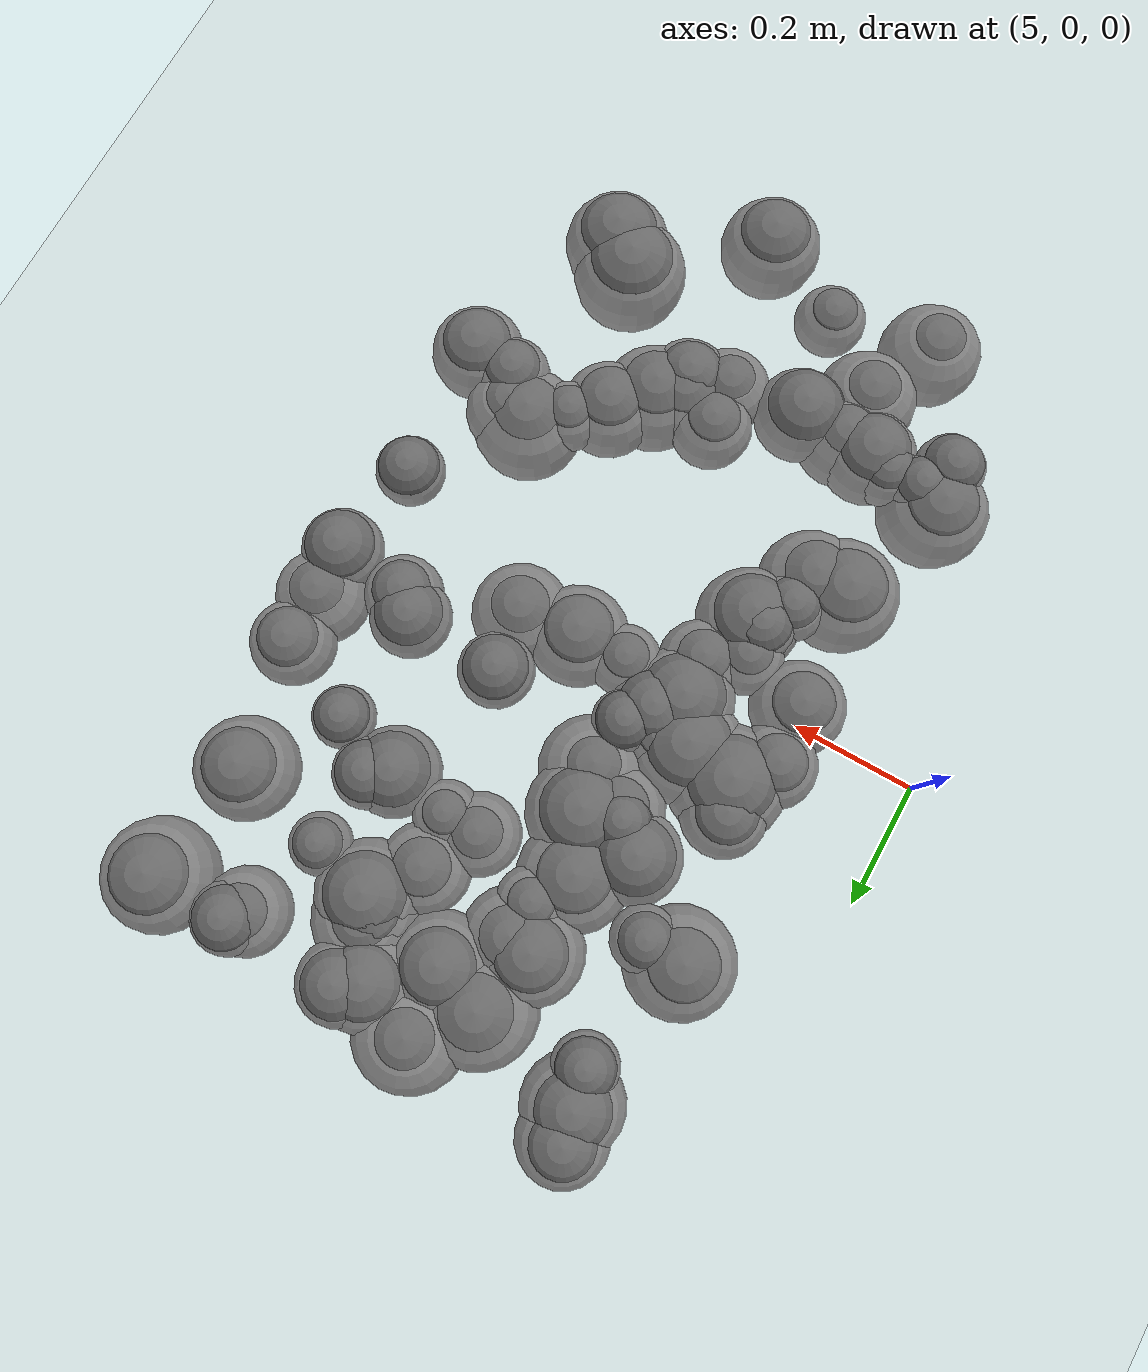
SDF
<sdf version="1.6">
 <world name="high_freq_world">
  <model name="ground_plane">
   <static>true</static>
   <link name="link">
    <collision name="collision">
     <geometry><plane><normal>0 0 1</normal><size>100 100</size></plane></geometry>
     <surface><friction><ode><mu>100.0</mu><mu2>100.0</mu2></ode></friction></surface>
    </collision>
    <visual name="visual">
     <geometry><plane><normal>0 0 1</normal><size>100 100</size></plane></geometry>
     <material><ambient>0.8 0.8 0.8 1</ambient><diffuse>0.8 0.8 0.8 1</diffuse></material>
    </visual>
   </link>
  </model>
  <model name="bump_3">
   <static>true</static>
   <pose>5.639 0.567 -0.061 0 0 0</pose>
   <link name="link">
    <collision name="collision">
     <geometry><sphere><radius>0.078</radius></sphere></geometry>
     <surface><friction><ode><mu>100.0</mu><mu2>100.0</mu2></ode></friction></surface>
    </collision>
    <visual name="visual">
     <geometry><sphere><radius>0.078</radius></sphere></geometry>
     <material><ambient>0.3 0.3 0.3 1</ambient><diffuse>0.4 0.4 0.4 1</diffuse></material>
    </visual>
   </link>
  </model>
  <model name="bump_20">
   <static>true</static>
   <pose>5.345 -0.571 -0.075 0 0 0</pose>
   <link name="link">
    <collision name="collision">
     <geometry><sphere><radius>0.086</radius></sphere></geometry>
     <surface><friction><ode><mu>100.0</mu><mu2>100.0</mu2></ode></friction></surface>
    </collision>
    <visual name="visual">
     <geometry><sphere><radius>0.086</radius></sphere></geometry>
     <material><ambient>0.3 0.3 0.3 1</ambient><diffuse>0.4 0.4 0.4 1</diffuse></material>
    </visual>
   </link>
  </model>
  <model name="bump_21">
   <static>true</static>
   <pose>5.287 -0.701 -0.077 0 0 0</pose>
   <link name="link">
    <collision name="collision">
     <geometry><sphere><radius>0.087</radius></sphere></geometry>
     <surface><friction><ode><mu>100.0</mu><mu2>100.0</mu2></ode></friction></surface>
    </collision>
    <visual name="visual">
     <geometry><sphere><radius>0.087</radius></sphere></geometry>
     <material><ambient>0.3 0.3 0.3 1</ambient><diffuse>0.4 0.4 0.4 1</diffuse></material>
    </visual>
   </link>
  </model>
  <model name="bump_32">
   <static>true</static>
   <pose>5.493 0.702 -0.084 0 0 0</pose>
   <link name="link">
    <collision name="collision">
     <geometry><sphere><radius>0.095</radius></sphere></geometry>
     <surface><friction><ode><mu>100.0</mu><mu2>100.0</mu2></ode></friction></surface>
    </collision>
    <visual name="visual">
     <geometry><sphere><radius>0.095</radius></sphere></geometry>
     <material><ambient>0.3 0.3 0.3 1</ambient><diffuse>0.4 0.4 0.4 1</diffuse></material>
    </visual>
   </link>
  </model>
  <model name="bump_49">
   <static>true</static>
   <pose>5.717 -0.340 -0.063 0 0 0</pose>
   <link name="link">
    <collision name="collision">
     <geometry><sphere><radius>0.081</radius></sphere></geometry>
     <surface><friction><ode><mu>100.0</mu><mu2>100.0</mu2></ode></friction></surface>
    </collision>
    <visual name="visual">
     <geometry><sphere><radius>0.081</radius></sphere></geometry>
     <material><ambient>0.3 0.3 0.3 1</ambient><diffuse>0.4 0.4 0.4 1</diffuse></material>
    </visual>
   </link>
  </model>
  <model name="bump_70">
   <static>true</static>
   <pose>5.224 0.668 -0.059 0 0 0</pose>
   <link name="link">
    <collision name="collision">
     <geometry><sphere><radius>0.083</radius></sphere></geometry>
     <surface><friction><ode><mu>100.0</mu><mu2>100.0</mu2></ode></friction></surface>
    </collision>
    <visual name="visual">
     <geometry><sphere><radius>0.083</radius></sphere></geometry>
     <material><ambient>0.3 0.3 0.3 1</ambient><diffuse>0.4 0.4 0.4 1</diffuse></material>
    </visual>
   </link>
  </model>
  <model name="bump_76">
   <static>true</static>
   <pose>5.201 -0.459 -0.032 0 0 0</pose>
   <link name="link">
    <collision name="collision">
     <geometry><sphere><radius>0.053</radius></sphere></geometry>
     <surface><friction><ode><mu>100.0</mu><mu2>100.0</mu2></ode></friction></surface>
    </collision>
    <visual name="visual">
     <geometry><sphere><radius>0.053</radius></sphere></geometry>
     <material><ambient>0.3 0.3 0.3 1</ambient><diffuse>0.4 0.4 0.4 1</diffuse></material>
    </visual>
   </link>
  </model>
  <model name="bump_83">
   <static>true</static>
   <pose>5.158 -0.446 -0.072 0 0 0</pose>
   <link name="link">
    <collision name="collision">
     <geometry><sphere><radius>0.092</radius></sphere></geometry>
     <surface><friction><ode><mu>100.0</mu><mu2>100.0</mu2></ode></friction></surface>
    </collision>
    <visual name="visual">
     <geometry><sphere><radius>0.092</radius></sphere></geometry>
     <material><ambient>0.3 0.3 0.3 1</ambient><diffuse>0.4 0.4 0.4 1</diffuse></material>
    </visual>
   </link>
  </model>
  <model name="bump_94">
   <static>true</static>
   <pose>5.248 0.400 -0.036 0 0 0</pose>
   <link name="link">
    <collision name="collision">
     <geometry><sphere><radius>0.055</radius></sphere></geometry>
     <surface><friction><ode><mu>100.0</mu><mu2>100.0</mu2></ode></friction></surface>
    </collision>
    <visual name="visual">
     <geometry><sphere><radius>0.055</radius></sphere></geometry>
     <material><ambient>0.3 0.3 0.3 1</ambient><diffuse>0.4 0.4 0.4 1</diffuse></material>
    </visual>
   </link>
  </model>
  <model name="bump_98">
   <static>true</static>
   <pose>5.248 0.121 -0.069 0 0 0</pose>
   <link name="link">
    <collision name="collision">
     <geometry><sphere><radius>0.099</radius></sphere></geometry>
     <surface><friction><ode><mu>100.0</mu><mu2>100.0</mu2></ode></friction></surface>
    </collision>
    <visual name="visual">
     <geometry><sphere><radius>0.099</radius></sphere></geometry>
     <material><ambient>0.3 0.3 0.3 1</ambient><diffuse>0.4 0.4 0.4 1</diffuse></material>
    </visual>
   </link>
  </model>
  <model name="bump_110">
   <static>true</static>
   <pose>5.347 -0.481 -0.064 0 0 0</pose>
   <link name="link">
    <collision name="collision">
     <geometry><sphere><radius>0.076</radius></sphere></geometry>
     <surface><friction><ode><mu>100.0</mu><mu2>100.0</mu2></ode></friction></surface>
    </collision>
    <visual name="visual">
     <geometry><sphere><radius>0.076</radius></sphere></geometry>
     <material><ambient>0.3 0.3 0.3 1</ambient><diffuse>0.4 0.4 0.4 1</diffuse></material>
    </visual>
   </link>
  </model>
  <model name="bump_115">
   <static>true</static>
   <pose>5.806 -0.577 -0.068 0 0 0</pose>
   <link name="link">
    <collision name="collision">
     <geometry><sphere><radius>0.097</radius></sphere></geometry>
     <surface><friction><ode><mu>100.0</mu><mu2>100.0</mu2></ode></friction></surface>
    </collision>
    <visual name="visual">
     <geometry><sphere><radius>0.097</radius></sphere></geometry>
     <material><ambient>0.3 0.3 0.3 1</ambient><diffuse>0.4 0.4 0.4 1</diffuse></material>
    </visual>
   </link>
  </model>
  <model name="bump_129">
   <static>true</static>
   <pose>5.619 -0.420 -0.067 0 0 0</pose>
   <link name="link">
    <collision name="collision">
     <geometry><sphere><radius>0.083</radius></sphere></geometry>
     <surface><friction><ode><mu>100.0</mu><mu2>100.0</mu2></ode></friction></surface>
    </collision>
    <visual name="visual">
     <geometry><sphere><radius>0.083</radius></sphere></geometry>
     <material><ambient>0.3 0.3 0.3 1</ambient><diffuse>0.4 0.4 0.4 1</diffuse></material>
    </visual>
   </link>
  </model>
  <model name="bump_131">
   <static>true</static>
   <pose>5.828 0.331 -0.028 0 0 0</pose>
   <link name="link">
    <collision name="collision">
     <geometry><sphere><radius>0.052</radius></sphere></geometry>
     <surface><friction><ode><mu>100.0</mu><mu2>100.0</mu2></ode></friction></surface>
    </collision>
    <visual name="visual">
     <geometry><sphere><radius>0.052</radius></sphere></geometry>
     <material><ambient>0.3 0.3 0.3 1</ambient><diffuse>0.4 0.4 0.4 1</diffuse></material>
    </visual>
   </link>
  </model>
  <model name="bump_133">
   <static>true</static>
   <pose>5.640 0.584 -0.080 0 0 0</pose>
   <link name="link">
    <collision name="collision">
     <geometry><sphere><radius>0.091</radius></sphere></geometry>
     <surface><friction><ode><mu>100.0</mu><mu2>100.0</mu2></ode></friction></surface>
    </collision>
    <visual name="visual">
     <geometry><sphere><radius>0.091</radius></sphere></geometry>
     <material><ambient>0.3 0.3 0.3 1</ambient><diffuse>0.4 0.4 0.4 1</diffuse></material>
    </visual>
   </link>
  </model>
  <model name="bump_134">
   <static>true</static>
   <pose>5.237 0.607 -0.027 0 0 0</pose>
   <link name="link">
    <collision name="collision">
     <geometry><sphere><radius>0.054</radius></sphere></geometry>
     <surface><friction><ode><mu>100.0</mu><mu2>100.0</mu2></ode></friction></surface>
    </collision>
    <visual name="visual">
     <geometry><sphere><radius>0.054</radius></sphere></geometry>
     <material><ambient>0.3 0.3 0.3 1</ambient><diffuse>0.4 0.4 0.4 1</diffuse></material>
    </visual>
   </link>
  </model>
  <model name="bump_136">
   <static>true</static>
   <pose>5.821 0.138 -0.042 0 0 0</pose>
   <link name="link">
    <collision name="collision">
     <geometry><sphere><radius>0.068</radius></sphere></geometry>
     <surface><friction><ode><mu>100.0</mu><mu2>100.0</mu2></ode></friction></surface>
    </collision>
    <visual name="visual">
     <geometry><sphere><radius>0.068</radius></sphere></geometry>
     <material><ambient>0.3 0.3 0.3 1</ambient><diffuse>0.4 0.4 0.4 1</diffuse></material>
    </visual>
   </link>
  </model>
  <model name="bump_137">
   <static>true</static>
   <pose>5.376 0.041 -0.060 0 0 0</pose>
   <link name="link">
    <collision name="collision">
     <geometry><sphere><radius>0.090</radius></sphere></geometry>
     <surface><friction><ode><mu>100.0</mu><mu2>100.0</mu2></ode></friction></surface>
    </collision>
    <visual name="visual">
     <geometry><sphere><radius>0.090</radius></sphere></geometry>
     <material><ambient>0.3 0.3 0.3 1</ambient><diffuse>0.4 0.4 0.4 1</diffuse></material>
    </visual>
   </link>
  </model>
  <model name="bump_149">
   <static>true</static>
   <pose>5.227 -0.246 -0.075 0 0 0</pose>
   <link name="link">
    <collision name="collision">
     <geometry><sphere><radius>0.096</radius></sphere></geometry>
     <surface><friction><ode><mu>100.0</mu><mu2>100.0</mu2></ode></friction></surface>
    </collision>
    <visual name="visual">
     <geometry><sphere><radius>0.096</radius></sphere></geometry>
     <material><ambient>0.3 0.3 0.3 1</ambient><diffuse>0.4 0.4 0.4 1</diffuse></material>
    </visual>
   </link>
  </model>
  <model name="bump_154">
   <static>true</static>
   <pose>5.380 0.245 -0.064 0 0 0</pose>
   <link name="link">
    <collision name="collision">
     <geometry><sphere><radius>0.079</radius></sphere></geometry>
     <surface><friction><ode><mu>100.0</mu><mu2>100.0</mu2></ode></friction></surface>
    </collision>
    <visual name="visual">
     <geometry><sphere><radius>0.079</radius></sphere></geometry>
     <material><ambient>0.3 0.3 0.3 1</ambient><diffuse>0.4 0.4 0.4 1</diffuse></material>
    </visual>
   </link>
  </model>
  <model name="bump_157">
   <static>true</static>
   <pose>5.927 0.476 -0.063 0 0 0</pose>
   <link name="link">
    <collision name="collision">
     <geometry><sphere><radius>0.086</radius></sphere></geometry>
     <surface><friction><ode><mu>100.0</mu><mu2>100.0</mu2></ode></friction></surface>
    </collision>
    <visual name="visual">
     <geometry><sphere><radius>0.086</radius></sphere></geometry>
     <material><ambient>0.3 0.3 0.3 1</ambient><diffuse>0.4 0.4 0.4 1</diffuse></material>
    </visual>
   </link>
  </model>
  <model name="bump_160">
   <static>true</static>
   <pose>5.968 0.266 -0.052 0 0 0</pose>
   <link name="link">
    <collision name="collision">
     <geometry><sphere><radius>0.071</radius></sphere></geometry>
     <surface><friction><ode><mu>100.0</mu><mu2>100.0</mu2></ode></friction></surface>
    </collision>
    <visual name="visual">
     <geometry><sphere><radius>0.071</radius></sphere></geometry>
     <material><ambient>0.3 0.3 0.3 1</ambient><diffuse>0.4 0.4 0.4 1</diffuse></material>
    </visual>
   </link>
  </model>
  <model name="bump_166">
   <static>true</static>
   <pose>5.317 -0.072 -0.052 0 0 0</pose>
   <link name="link">
    <collision name="collision">
     <geometry><sphere><radius>0.063</radius></sphere></geometry>
     <surface><friction><ode><mu>100.0</mu><mu2>100.0</mu2></ode></friction></surface>
    </collision>
    <visual name="visual">
     <geometry><sphere><radius>0.063</radius></sphere></geometry>
     <material><ambient>0.3 0.3 0.3 1</ambient><diffuse>0.4 0.4 0.4 1</diffuse></material>
    </visual>
   </link>
  </model>
  <model name="bump_172">
   <static>true</static>
   <pose>5.230 0.170 -0.051 0 0 0</pose>
   <link name="link">
    <collision name="collision">
     <geometry><sphere><radius>0.071</radius></sphere></geometry>
     <surface><friction><ode><mu>100.0</mu><mu2>100.0</mu2></ode></friction></surface>
    </collision>
    <visual name="visual">
     <geometry><sphere><radius>0.071</radius></sphere></geometry>
     <material><ambient>0.3 0.3 0.3 1</ambient><diffuse>0.4 0.4 0.4 1</diffuse></material>
    </visual>
   </link>
  </model>
  <model name="bump_176">
   <static>true</static>
   <pose>5.749 0.388 -0.033 0 0 0</pose>
   <link name="link">
    <collision name="collision">
     <geometry><sphere><radius>0.059</radius></sphere></geometry>
     <surface><friction><ode><mu>100.0</mu><mu2>100.0</mu2></ode></friction></surface>
    </collision>
    <visual name="visual">
     <geometry><sphere><radius>0.059</radius></sphere></geometry>
     <material><ambient>0.3 0.3 0.3 1</ambient><diffuse>0.4 0.4 0.4 1</diffuse></material>
    </visual>
   </link>
  </model>
  <model name="bump_184">
   <static>true</static>
   <pose>5.851 -0.613 -0.063 0 0 0</pose>
   <link name="link">
    <collision name="collision">
     <geometry><sphere><radius>0.090</radius></sphere></geometry>
     <surface><friction><ode><mu>100.0</mu><mu2>100.0</mu2></ode></friction></surface>
    </collision>
    <visual name="visual">
     <geometry><sphere><radius>0.090</radius></sphere></geometry>
     <material><ambient>0.3 0.3 0.3 1</ambient><diffuse>0.4 0.4 0.4 1</diffuse></material>
    </visual>
   </link>
  </model>
  <model name="bump_188">
   <static>true</static>
   <pose>5.366 0.260 -0.023 0 0 0</pose>
   <link name="link">
    <collision name="collision">
     <geometry><sphere><radius>0.051</radius></sphere></geometry>
     <surface><friction><ode><mu>100.0</mu><mu2>100.0</mu2></ode></friction></surface>
    </collision>
    <visual name="visual">
     <geometry><sphere><radius>0.051</radius></sphere></geometry>
     <material><ambient>0.3 0.3 0.3 1</ambient><diffuse>0.4 0.4 0.4 1</diffuse></material>
    </visual>
   </link>
  </model>
  <model name="bump_191">
   <static>true</static>
   <pose>5.959 -0.318 -0.056 0 0 0</pose>
   <link name="link">
    <collision name="collision">
     <geometry><sphere><radius>0.079</radius></sphere></geometry>
     <surface><friction><ode><mu>100.0</mu><mu2>100.0</mu2></ode></friction></surface>
    </collision>
    <visual name="visual">
     <geometry><sphere><radius>0.079</radius></sphere></geometry>
     <material><ambient>0.3 0.3 0.3 1</ambient><diffuse>0.4 0.4 0.4 1</diffuse></material>
    </visual>
   </link>
  </model>
  <model name="bump_193">
   <static>true</static>
   <pose>5.822 0.685 -0.034 0 0 0</pose>
   <link name="link">
    <collision name="collision">
     <geometry><sphere><radius>0.060</radius></sphere></geometry>
     <surface><friction><ode><mu>100.0</mu><mu2>100.0</mu2></ode></friction></surface>
    </collision>
    <visual name="visual">
     <geometry><sphere><radius>0.060</radius></sphere></geometry>
     <material><ambient>0.3 0.3 0.3 1</ambient><diffuse>0.4 0.4 0.4 1</diffuse></material>
    </visual>
   </link>
  </model>
  <model name="bump_197">
   <static>true</static>
   <pose>5.171 -0.513 -0.033 0 0 0</pose>
   <link name="link">
    <collision name="collision">
     <geometry><sphere><radius>0.059</radius></sphere></geometry>
     <surface><friction><ode><mu>100.0</mu><mu2>100.0</mu2></ode></friction></surface>
    </collision>
    <visual name="visual">
     <geometry><sphere><radius>0.059</radius></sphere></geometry>
     <material><ambient>0.3 0.3 0.3 1</ambient><diffuse>0.4 0.4 0.4 1</diffuse></material>
    </visual>
   </link>
  </model>
  <model name="bump_200">
   <static>true</static>
   <pose>5.390 0.503 -0.064 0 0 0</pose>
   <link name="link">
    <collision name="collision">
     <geometry><sphere><radius>0.086</radius></sphere></geometry>
     <surface><friction><ode><mu>100.0</mu><mu2>100.0</mu2></ode></friction></surface>
    </collision>
    <visual name="visual">
     <geometry><sphere><radius>0.086</radius></sphere></geometry>
     <material><ambient>0.3 0.3 0.3 1</ambient><diffuse>0.4 0.4 0.4 1</diffuse></material>
    </visual>
   </link>
  </model>
  <model name="bump_206">
   <static>true</static>
   <pose>5.438 0.120 -0.024 0 0 0</pose>
   <link name="link">
    <collision name="collision">
     <geometry><sphere><radius>0.052</radius></sphere></geometry>
     <surface><friction><ode><mu>100.0</mu><mu2>100.0</mu2></ode></friction></surface>
    </collision>
    <visual name="visual">
     <geometry><sphere><radius>0.052</radius></sphere></geometry>
     <material><ambient>0.3 0.3 0.3 1</ambient><diffuse>0.4 0.4 0.4 1</diffuse></material>
    </visual>
   </link>
  </model>
  <model name="bump_208">
   <static>true</static>
   <pose>5.571 0.028 -0.065 0 0 0</pose>
   <link name="link">
    <collision name="collision">
     <geometry><sphere><radius>0.085</radius></sphere></geometry>
     <surface><friction><ode><mu>100.0</mu><mu2>100.0</mu2></ode></friction></surface>
    </collision>
    <visual name="visual">
     <geometry><sphere><radius>0.085</radius></sphere></geometry>
     <material><ambient>0.3 0.3 0.3 1</ambient><diffuse>0.4 0.4 0.4 1</diffuse></material>
    </visual>
   </link>
  </model>
  <model name="bump_209">
   <static>true</static>
   <pose>5.558 -0.468 -0.062 0 0 0</pose>
   <link name="link">
    <collision name="collision">
     <geometry><sphere><radius>0.072</radius></sphere></geometry>
     <surface><friction><ode><mu>100.0</mu><mu2>100.0</mu2></ode></friction></surface>
    </collision>
    <visual name="visual">
     <geometry><sphere><radius>0.072</radius></sphere></geometry>
     <material><ambient>0.3 0.3 0.3 1</ambient><diffuse>0.4 0.4 0.4 1</diffuse></material>
    </visual>
   </link>
  </model>
  <model name="bump_210">
   <static>true</static>
   <pose>5.851 0.110 -0.047 0 0 0</pose>
   <link name="link">
    <collision name="collision">
     <geometry><sphere><radius>0.066</radius></sphere></geometry>
     <surface><friction><ode><mu>100.0</mu><mu2>100.0</mu2></ode></friction></surface>
    </collision>
    <visual name="visual">
     <geometry><sphere><radius>0.066</radius></sphere></geometry>
     <material><ambient>0.3 0.3 0.3 1</ambient><diffuse>0.4 0.4 0.4 1</diffuse></material>
    </visual>
   </link>
  </model>
  <model name="bump_222">
   <static>true</static>
   <pose>5.655 0.549 -0.060 0 0 0</pose>
   <link name="link">
    <collision name="collision">
     <geometry><sphere><radius>0.088</radius></sphere></geometry>
     <surface><friction><ode><mu>100.0</mu><mu2>100.0</mu2></ode></friction></surface>
    </collision>
    <visual name="visual">
     <geometry><sphere><radius>0.088</radius></sphere></geometry>
     <material><ambient>0.3 0.3 0.3 1</ambient><diffuse>0.4 0.4 0.4 1</diffuse></material>
    </visual>
   </link>
  </model>
  <model name="bump_234">
   <static>true</static>
   <pose>5.377 -0.031 -0.057 0 0 0</pose>
   <link name="link">
    <collision name="collision">
     <geometry><sphere><radius>0.070</radius></sphere></geometry>
     <surface><friction><ode><mu>100.0</mu><mu2>100.0</mu2></ode></friction></surface>
    </collision>
    <visual name="visual">
     <geometry><sphere><radius>0.070</radius></sphere></geometry>
     <material><ambient>0.3 0.3 0.3 1</ambient><diffuse>0.4 0.4 0.4 1</diffuse></material>
    </visual>
   </link>
  </model>
  <model name="bump_239">
   <static>true</static>
   <pose>5.970 0.174 -0.067 0 0 0</pose>
   <link name="link">
    <collision name="collision">
     <geometry><sphere><radius>0.079</radius></sphere></geometry>
     <surface><friction><ode><mu>100.0</mu><mu2>100.0</mu2></ode></friction></surface>
    </collision>
    <visual name="visual">
     <geometry><sphere><radius>0.079</radius></sphere></geometry>
     <material><ambient>0.3 0.3 0.3 1</ambient><diffuse>0.4 0.4 0.4 1</diffuse></material>
    </visual>
   </link>
  </model>
  <model name="bump_247">
   <static>true</static>
   <pose>5.375 0.110 -0.048 0 0 0</pose>
   <link name="link">
    <collision name="collision">
     <geometry><sphere><radius>0.061</radius></sphere></geometry>
     <surface><friction><ode><mu>100.0</mu><mu2>100.0</mu2></ode></friction></surface>
    </collision>
    <visual name="visual">
     <geometry><sphere><radius>0.061</radius></sphere></geometry>
     <material><ambient>0.3 0.3 0.3 1</ambient><diffuse>0.4 0.4 0.4 1</diffuse></material>
    </visual>
   </link>
  </model>
  <model name="bump_250">
   <static>true</static>
   <pose>5.945 -0.073 -0.029 0 0 0</pose>
   <link name="link">
    <collision name="collision">
     <geometry><sphere><radius>0.058</radius></sphere></geometry>
     <surface><friction><ode><mu>100.0</mu><mu2>100.0</mu2></ode></friction></surface>
    </collision>
    <visual name="visual">
     <geometry><sphere><radius>0.058</radius></sphere></geometry>
     <material><ambient>0.3 0.3 0.3 1</ambient><diffuse>0.4 0.4 0.4 1</diffuse></material>
    </visual>
   </link>
  </model>
  <model name="bump_257">
   <static>true</static>
   <pose>5.767 -0.291 -0.047 0 0 0</pose>
   <link name="link">
    <collision name="collision">
     <geometry><sphere><radius>0.059</radius></sphere></geometry>
     <surface><friction><ode><mu>100.0</mu><mu2>100.0</mu2></ode></friction></surface>
    </collision>
    <visual name="visual">
     <geometry><sphere><radius>0.059</radius></sphere></geometry>
     <material><ambient>0.3 0.3 0.3 1</ambient><diffuse>0.4 0.4 0.4 1</diffuse></material>
    </visual>
   </link>
  </model>
  <model name="bump_260">
   <static>true</static>
   <pose>5.611 0.383 -0.044 0 0 0</pose>
   <link name="link">
    <collision name="collision">
     <geometry><sphere><radius>0.055</radius></sphere></geometry>
     <surface><friction><ode><mu>100.0</mu><mu2>100.0</mu2></ode></friction></surface>
    </collision>
    <visual name="visual">
     <geometry><sphere><radius>0.055</radius></sphere></geometry>
     <material><ambient>0.3 0.3 0.3 1</ambient><diffuse>0.4 0.4 0.4 1</diffuse></material>
    </visual>
   </link>
  </model>
  <model name="bump_262">
   <static>true</static>
   <pose>5.429 -0.484 -0.050 0 0 0</pose>
   <link name="link">
    <collision name="collision">
     <geometry><sphere><radius>0.079</radius></sphere></geometry>
     <surface><friction><ode><mu>100.0</mu><mu2>100.0</mu2></ode></friction></surface>
    </collision>
    <visual name="visual">
     <geometry><sphere><radius>0.079</radius></sphere></geometry>
     <material><ambient>0.3 0.3 0.3 1</ambient><diffuse>0.4 0.4 0.4 1</diffuse></material>
    </visual>
   </link>
  </model>
  <model name="bump_270">
   <static>true</static>
   <pose>5.427 0.435 -0.046 0 0 0</pose>
   <link name="link">
    <collision name="collision">
     <geometry><sphere><radius>0.058</radius></sphere></geometry>
     <surface><friction><ode><mu>100.0</mu><mu2>100.0</mu2></ode></friction></surface>
    </collision>
    <visual name="visual">
     <geometry><sphere><radius>0.058</radius></sphere></geometry>
     <material><ambient>0.3 0.3 0.3 1</ambient><diffuse>0.4 0.4 0.4 1</diffuse></material>
    </visual>
   </link>
  </model>
  <model name="bump_276">
   <static>true</static>
   <pose>5.420 0.617 -0.081 0 0 0</pose>
   <link name="link">
    <collision name="collision">
     <geometry><sphere><radius>0.098</radius></sphere></geometry>
     <surface><friction><ode><mu>100.0</mu><mu2>100.0</mu2></ode></friction></surface>
    </collision>
    <visual name="visual">
     <geometry><sphere><radius>0.098</radius></sphere></geometry>
     <material><ambient>0.3 0.3 0.3 1</ambient><diffuse>0.4 0.4 0.4 1</diffuse></material>
    </visual>
   </link>
  </model>
  <model name="bump_289">
   <static>true</static>
   <pose>5.321 0.297 -0.049 0 0 0</pose>
   <link name="link">
    <collision name="collision">
     <geometry><sphere><radius>0.078</radius></sphere></geometry>
     <surface><friction><ode><mu>100.0</mu><mu2>100.0</mu2></ode></friction></surface>
    </collision>
    <visual name="visual">
     <geometry><sphere><radius>0.078</radius></sphere></geometry>
     <material><ambient>0.3 0.3 0.3 1</ambient><diffuse>0.4 0.4 0.4 1</diffuse></material>
    </visual>
   </link>
  </model>
  <model name="bump_298">
   <static>true</static>
   <pose>5.293 -0.177 -0.040 0 0 0</pose>
   <link name="link">
    <collision name="collision">
     <geometry><sphere><radius>0.058</radius></sphere></geometry>
     <surface><friction><ode><mu>100.0</mu><mu2>100.0</mu2></ode></friction></surface>
    </collision>
    <visual name="visual">
     <geometry><sphere><radius>0.058</radius></sphere></geometry>
     <material><ambient>0.3 0.3 0.3 1</ambient><diffuse>0.4 0.4 0.4 1</diffuse></material>
    </visual>
   </link>
  </model>
  <model name="bump_302">
   <static>true</static>
   <pose>5.428 0.275 -0.062 0 0 0</pose>
   <link name="link">
    <collision name="collision">
     <geometry><sphere><radius>0.091</radius></sphere></geometry>
     <surface><friction><ode><mu>100.0</mu><mu2>100.0</mu2></ode></friction></surface>
    </collision>
    <visual name="visual">
     <geometry><sphere><radius>0.091</radius></sphere></geometry>
     <material><ambient>0.3 0.3 0.3 1</ambient><diffuse>0.4 0.4 0.4 1</diffuse></material>
    </visual>
   </link>
  </model>
  <model name="bump_316">
   <static>true</static>
   <pose>5.214 0.718 -0.054 0 0 0</pose>
   <link name="link">
    <collision name="collision">
     <geometry><sphere><radius>0.074</radius></sphere></geometry>
     <surface><friction><ode><mu>100.0</mu><mu2>100.0</mu2></ode></friction></surface>
    </collision>
    <visual name="visual">
     <geometry><sphere><radius>0.074</radius></sphere></geometry>
     <material><ambient>0.3 0.3 0.3 1</ambient><diffuse>0.4 0.4 0.4 1</diffuse></material>
    </visual>
   </link>
  </model>
  <model name="bump_319">
   <static>true</static>
   <pose>5.180 0.404 -0.074 0 0 0</pose>
   <link name="link">
    <collision name="collision">
     <geometry><sphere><radius>0.092</radius></sphere></geometry>
     <surface><friction><ode><mu>100.0</mu><mu2>100.0</mu2></ode></friction></surface>
    </collision>
    <visual name="visual">
     <geometry><sphere><radius>0.092</radius></sphere></geometry>
     <material><ambient>0.3 0.3 0.3 1</ambient><diffuse>0.4 0.4 0.4 1</diffuse></material>
    </visual>
   </link>
  </model>
  <model name="bump_324">
   <static>true</static>
   <pose>5.263 -0.458 -0.040 0 0 0</pose>
   <link name="link">
    <collision name="collision">
     <geometry><sphere><radius>0.057</radius></sphere></geometry>
     <surface><friction><ode><mu>100.0</mu><mu2>100.0</mu2></ode></friction></surface>
    </collision>
    <visual name="visual">
     <geometry><sphere><radius>0.057</radius></sphere></geometry>
     <material><ambient>0.3 0.3 0.3 1</ambient><diffuse>0.4 0.4 0.4 1</diffuse></material>
    </visual>
   </link>
  </model>
  <model name="bump_326">
   <static>true</static>
   <pose>5.599 0.472 -0.061 0 0 0</pose>
   <link name="link">
    <collision name="collision">
     <geometry><sphere><radius>0.075</radius></sphere></geometry>
     <surface><friction><ode><mu>100.0</mu><mu2>100.0</mu2></ode></friction></surface>
    </collision>
    <visual name="visual">
     <geometry><sphere><radius>0.075</radius></sphere></geometry>
     <material><ambient>0.3 0.3 0.3 1</ambient><diffuse>0.4 0.4 0.4 1</diffuse></material>
    </visual>
   </link>
  </model>
  <model name="bump_328">
   <static>true</static>
   <pose>5.807 0.666 -0.059 0 0 0</pose>
   <link name="link">
    <collision name="collision">
     <geometry><sphere><radius>0.072</radius></sphere></geometry>
     <surface><friction><ode><mu>100.0</mu><mu2>100.0</mu2></ode></friction></surface>
    </collision>
    <visual name="visual">
     <geometry><sphere><radius>0.072</radius></sphere></geometry>
     <material><ambient>0.3 0.3 0.3 1</ambient><diffuse>0.4 0.4 0.4 1</diffuse></material>
    </visual>
   </link>
  </model>
  <model name="bump_341">
   <static>true</static>
   <pose>5.332 0.104 -0.068 0 0 0</pose>
   <link name="link">
    <collision name="collision">
     <geometry><sphere><radius>0.096</radius></sphere></geometry>
     <surface><friction><ode><mu>100.0</mu><mu2>100.0</mu2></ode></friction></surface>
    </collision>
    <visual name="visual">
     <geometry><sphere><radius>0.096</radius></sphere></geometry>
     <material><ambient>0.3 0.3 0.3 1</ambient><diffuse>0.4 0.4 0.4 1</diffuse></material>
    </visual>
   </link>
  </model>
  <model name="bump_348">
   <static>true</static>
   <pose>5.757 0.519 -0.034 0 0 0</pose>
   <link name="link">
    <collision name="collision">
     <geometry><sphere><radius>0.051</radius></sphere></geometry>
     <surface><friction><ode><mu>100.0</mu><mu2>100.0</mu2></ode></friction></surface>
    </collision>
    <visual name="visual">
     <geometry><sphere><radius>0.051</radius></sphere></geometry>
     <material><ambient>0.3 0.3 0.3 1</ambient><diffuse>0.4 0.4 0.4 1</diffuse></material>
    </visual>
   </link>
  </model>
  <model name="bump_349">
   <static>true</static>
   <pose>5.296 -0.475 -0.055 0 0 0</pose>
   <link name="link">
    <collision name="collision">
     <geometry><sphere><radius>0.080</radius></sphere></geometry>
     <surface><friction><ode><mu>100.0</mu><mu2>100.0</mu2></ode></friction></surface>
    </collision>
    <visual name="visual">
     <geometry><sphere><radius>0.080</radius></sphere></geometry>
     <material><ambient>0.3 0.3 0.3 1</ambient><diffuse>0.4 0.4 0.4 1</diffuse></material>
    </visual>
   </link>
  </model>
  <model name="bump_354">
   <static>true</static>
   <pose>5.503 0.587 -0.062 0 0 0</pose>
   <link name="link">
    <collision name="collision">
     <geometry><sphere><radius>0.085</radius></sphere></geometry>
     <surface><friction><ode><mu>100.0</mu><mu2>100.0</mu2></ode></friction></surface>
    </collision>
    <visual name="visual">
     <geometry><sphere><radius>0.085</radius></sphere></geometry>
     <material><ambient>0.3 0.3 0.3 1</ambient><diffuse>0.4 0.4 0.4 1</diffuse></material>
    </visual>
   </link>
  </model>
  <model name="bump_361">
   <static>true</static>
   <pose>5.463 -0.659 -0.048 0 0 0</pose>
   <link name="link">
    <collision name="collision">
     <geometry><sphere><radius>0.060</radius></sphere></geometry>
     <surface><friction><ode><mu>100.0</mu><mu2>100.0</mu2></ode></friction></surface>
    </collision>
    <visual name="visual">
     <geometry><sphere><radius>0.060</radius></sphere></geometry>
     <material><ambient>0.3 0.3 0.3 1</ambient><diffuse>0.4 0.4 0.4 1</diffuse></material>
    </visual>
   </link>
  </model>
  <model name="bump_367">
   <static>true</static>
   <pose>5.430 0.496 -0.065 0 0 0</pose>
   <link name="link">
    <collision name="collision">
     <geometry><sphere><radius>0.079</radius></sphere></geometry>
     <surface><friction><ode><mu>100.0</mu><mu2>100.0</mu2></ode></friction></surface>
    </collision>
    <visual name="visual">
     <geometry><sphere><radius>0.079</radius></sphere></geometry>
     <material><ambient>0.3 0.3 0.3 1</ambient><diffuse>0.4 0.4 0.4 1</diffuse></material>
    </visual>
   </link>
  </model>
  <model name="bump_370">
   <static>true</static>
   <pose>5.196 0.062 -0.055 0 0 0</pose>
   <link name="link">
    <collision name="collision">
     <geometry><sphere><radius>0.071</radius></sphere></geometry>
     <surface><friction><ode><mu>100.0</mu><mu2>100.0</mu2></ode></friction></surface>
    </collision>
    <visual name="visual">
     <geometry><sphere><radius>0.071</radius></sphere></geometry>
     <material><ambient>0.3 0.3 0.3 1</ambient><diffuse>0.4 0.4 0.4 1</diffuse></material>
    </visual>
   </link>
  </model>
  <model name="bump_371">
   <static>true</static>
   <pose>5.485 0.029 -0.049 0 0 0</pose>
   <link name="link">
    <collision name="collision">
     <geometry><sphere><radius>0.060</radius></sphere></geometry>
     <surface><friction><ode><mu>100.0</mu><mu2>100.0</mu2></ode></friction></surface>
    </collision>
    <visual name="visual">
     <geometry><sphere><radius>0.060</radius></sphere></geometry>
     <material><ambient>0.3 0.3 0.3 1</ambient><diffuse>0.4 0.4 0.4 1</diffuse></material>
    </visual>
   </link>
  </model>
  <model name="bump_373">
   <static>true</static>
   <pose>5.623 -0.446 -0.050 0 0 0</pose>
   <link name="link">
    <collision name="collision">
     <geometry><sphere><radius>0.071</radius></sphere></geometry>
     <surface><friction><ode><mu>100.0</mu><mu2>100.0</mu2></ode></friction></surface>
    </collision>
    <visual name="visual">
     <geometry><sphere><radius>0.071</radius></sphere></geometry>
     <material><ambient>0.3 0.3 0.3 1</ambient><diffuse>0.4 0.4 0.4 1</diffuse></material>
    </visual>
   </link>
  </model>
  <model name="bump_375">
   <static>true</static>
   <pose>5.715 0.365 -0.047 0 0 0</pose>
   <link name="link">
    <collision name="collision">
     <geometry><sphere><radius>0.075</radius></sphere></geometry>
     <surface><friction><ode><mu>100.0</mu><mu2>100.0</mu2></ode></friction></surface>
    </collision>
    <visual name="visual">
     <geometry><sphere><radius>0.075</radius></sphere></geometry>
     <material><ambient>0.3 0.3 0.3 1</ambient><diffuse>0.4 0.4 0.4 1</diffuse></material>
    </visual>
   </link>
  </model>
  <model name="bump_379">
   <static>true</static>
   <pose>5.323 -0.123 -0.033 0 0 0</pose>
   <link name="link">
    <collision name="collision">
     <geometry><sphere><radius>0.060</radius></sphere></geometry>
     <surface><friction><ode><mu>100.0</mu><mu2>100.0</mu2></ode></friction></surface>
    </collision>
    <visual name="visual">
     <geometry><sphere><radius>0.060</radius></sphere></geometry>
     <material><ambient>0.3 0.3 0.3 1</ambient><diffuse>0.4 0.4 0.4 1</diffuse></material>
    </visual>
   </link>
  </model>
  <model name="bump_388">
   <static>true</static>
   <pose>5.616 -0.738 -0.063 0 0 0</pose>
   <link name="link">
    <collision name="collision">
     <geometry><sphere><radius>0.086</radius></sphere></geometry>
     <surface><friction><ode><mu>100.0</mu><mu2>100.0</mu2></ode></friction></surface>
    </collision>
    <visual name="visual">
     <geometry><sphere><radius>0.086</radius></sphere></geometry>
     <material><ambient>0.3 0.3 0.3 1</ambient><diffuse>0.4 0.4 0.4 1</diffuse></material>
    </visual>
   </link>
  </model>
  <model name="bump_393">
   <static>true</static>
   <pose>5.409 0.079 -0.039 0 0 0</pose>
   <link name="link">
    <collision name="collision">
     <geometry><sphere><radius>0.068</radius></sphere></geometry>
     <surface><friction><ode><mu>100.0</mu><mu2>100.0</mu2></ode></friction></surface>
    </collision>
    <visual name="visual">
     <geometry><sphere><radius>0.068</radius></sphere></geometry>
     <material><ambient>0.3 0.3 0.3 1</ambient><diffuse>0.4 0.4 0.4 1</diffuse></material>
    </visual>
   </link>
  </model>
  <model name="bump_399">
   <static>true</static>
   <pose>5.885 -0.308 -0.044 0 0 0</pose>
   <link name="link">
    <collision name="collision">
     <geometry><sphere><radius>0.063</radius></sphere></geometry>
     <surface><friction><ode><mu>100.0</mu><mu2>100.0</mu2></ode></friction></surface>
    </collision>
    <visual name="visual">
     <geometry><sphere><radius>0.063</radius></sphere></geometry>
     <material><ambient>0.3 0.3 0.3 1</ambient><diffuse>0.4 0.4 0.4 1</diffuse></material>
    </visual>
   </link>
  </model>
  <model name="bump_400">
   <static>true</static>
   <pose>5.624 0.686 -0.046 0 0 0</pose>
   <link name="link">
    <collision name="collision">
     <geometry><sphere><radius>0.070</radius></sphere></geometry>
     <surface><friction><ode><mu>100.0</mu><mu2>100.0</mu2></ode></friction></surface>
    </collision>
    <visual name="visual">
     <geometry><sphere><radius>0.070</radius></sphere></geometry>
     <material><ambient>0.3 0.3 0.3 1</ambient><diffuse>0.4 0.4 0.4 1</diffuse></material>
    </visual>
   </link>
  </model>
  <model name="bump_417">
   <static>true</static>
   <pose>5.860 -0.258 -0.068 0 0 0</pose>
   <link name="link">
    <collision name="collision">
     <geometry><sphere><radius>0.078</radius></sphere></geometry>
     <surface><friction><ode><mu>100.0</mu><mu2>100.0</mu2></ode></friction></surface>
    </collision>
    <visual name="visual">
     <geometry><sphere><radius>0.078</radius></sphere></geometry>
     <material><ambient>0.3 0.3 0.3 1</ambient><diffuse>0.4 0.4 0.4 1</diffuse></material>
    </visual>
   </link>
  </model>
  <model name="bump_421">
   <static>true</static>
   <pose>5.661 -0.399 -0.072 0 0 0</pose>
   <link name="link">
    <collision name="collision">
     <geometry><sphere><radius>0.090</radius></sphere></geometry>
     <surface><friction><ode><mu>100.0</mu><mu2>100.0</mu2></ode></friction></surface>
    </collision>
    <visual name="visual">
     <geometry><sphere><radius>0.090</radius></sphere></geometry>
     <material><ambient>0.3 0.3 0.3 1</ambient><diffuse>0.4 0.4 0.4 1</diffuse></material>
    </visual>
   </link>
  </model>
  <model name="bump_427">
   <static>true</static>
   <pose>5.551 0.385 -0.057 0 0 0</pose>
   <link name="link">
    <collision name="collision">
     <geometry><sphere><radius>0.068</radius></sphere></geometry>
     <surface><friction><ode><mu>100.0</mu><mu2>100.0</mu2></ode></friction></surface>
    </collision>
    <visual name="visual">
     <geometry><sphere><radius>0.068</radius></sphere></geometry>
     <material><ambient>0.3 0.3 0.3 1</ambient><diffuse>0.4 0.4 0.4 1</diffuse></material>
    </visual>
   </link>
  </model>
  <model name="bump_447">
   <static>true</static>
   <pose>5.656 0.147 -0.035 0 0 0</pose>
   <link name="link">
    <collision name="collision">
     <geometry><sphere><radius>0.063</radius></sphere></geometry>
     <surface><friction><ode><mu>100.0</mu><mu2>100.0</mu2></ode></friction></surface>
    </collision>
    <visual name="visual">
     <geometry><sphere><radius>0.063</radius></sphere></geometry>
     <material><ambient>0.3 0.3 0.3 1</ambient><diffuse>0.4 0.4 0.4 1</diffuse></material>
    </visual>
   </link>
  </model>
  <model name="bump_458">
   <static>true</static>
   <pose>5.590 0.664 -0.064 0 0 0</pose>
   <link name="link">
    <collision name="collision">
     <geometry><sphere><radius>0.086</radius></sphere></geometry>
     <surface><friction><ode><mu>100.0</mu><mu2>100.0</mu2></ode></friction></surface>
    </collision>
    <visual name="visual">
     <geometry><sphere><radius>0.086</radius></sphere></geometry>
     <material><ambient>0.3 0.3 0.3 1</ambient><diffuse>0.4 0.4 0.4 1</diffuse></material>
    </visual>
   </link>
  </model>
  <model name="bump_459">
   <static>true</static>
   <pose>5.672 0.039 -0.070 0 0 0</pose>
   <link name="link">
    <collision name="collision">
     <geometry><sphere><radius>0.083</radius></sphere></geometry>
     <surface><friction><ode><mu>100.0</mu><mu2>100.0</mu2></ode></friction></surface>
    </collision>
    <visual name="visual">
     <geometry><sphere><radius>0.083</radius></sphere></geometry>
     <material><ambient>0.3 0.3 0.3 1</ambient><diffuse>0.4 0.4 0.4 1</diffuse></material>
    </visual>
   </link>
  </model>
  <model name="bump_461">
   <static>true</static>
   <pose>5.826 -0.255 -0.079 0 0 0</pose>
   <link name="link">
    <collision name="collision">
     <geometry><sphere><radius>0.095</radius></sphere></geometry>
     <surface><friction><ode><mu>100.0</mu><mu2>100.0</mu2></ode></friction></surface>
    </collision>
    <visual name="visual">
     <geometry><sphere><radius>0.095</radius></sphere></geometry>
     <material><ambient>0.3 0.3 0.3 1</ambient><diffuse>0.4 0.4 0.4 1</diffuse></material>
    </visual>
   </link>
  </model>
  <model name="bump_467">
   <static>true</static>
   <pose>5.446 0.204 -0.079 0 0 0</pose>
   <link name="link">
    <collision name="collision">
     <geometry><sphere><radius>0.089</radius></sphere></geometry>
     <surface><friction><ode><mu>100.0</mu><mu2>100.0</mu2></ode></friction></surface>
    </collision>
    <visual name="visual">
     <geometry><sphere><radius>0.089</radius></sphere></geometry>
     <material><ambient>0.3 0.3 0.3 1</ambient><diffuse>0.4 0.4 0.4 1</diffuse></material>
    </visual>
   </link>
  </model>
  <model name="bump_472">
   <static>true</static>
   <pose>5.958 0.686 -0.071 0 0 0</pose>
   <link name="link">
    <collision name="collision">
     <geometry><sphere><radius>0.094</radius></sphere></geometry>
     <surface><friction><ode><mu>100.0</mu><mu2>100.0</mu2></ode></friction></surface>
    </collision>
    <visual name="visual">
     <geometry><sphere><radius>0.094</radius></sphere></geometry>
     <material><ambient>0.3 0.3 0.3 1</ambient><diffuse>0.4 0.4 0.4 1</diffuse></material>
    </visual>
   </link>
  </model>
  <model name="bump_478">
   <static>true</static>
   <pose>5.975 0.095 -0.038 0 0 0</pose>
   <link name="link">
    <collision name="collision">
     <geometry><sphere><radius>0.068</radius></sphere></geometry>
     <surface><friction><ode><mu>100.0</mu><mu2>100.0</mu2></ode></friction></surface>
    </collision>
    <visual name="visual">
     <geometry><sphere><radius>0.068</radius></sphere></geometry>
     <material><ambient>0.3 0.3 0.3 1</ambient><diffuse>0.4 0.4 0.4 1</diffuse></material>
    </visual>
   </link>
  </model>
  <model name="bump_482">
   <static>true</static>
   <pose>5.205 -0.041 -0.062 0 0 0</pose>
   <link name="link">
    <collision name="collision">
     <geometry><sphere><radius>0.079</radius></sphere></geometry>
     <surface><friction><ode><mu>100.0</mu><mu2>100.0</mu2></ode></friction></surface>
    </collision>
    <visual name="visual">
     <geometry><sphere><radius>0.079</radius></sphere></geometry>
     <material><ambient>0.3 0.3 0.3 1</ambient><diffuse>0.4 0.4 0.4 1</diffuse></material>
    </visual>
   </link>
  </model>
  <model name="bump_487">
   <static>true</static>
   <pose>5.389 0.368 -0.073 0 0 0</pose>
   <link name="link">
    <collision name="collision">
     <geometry><sphere><radius>0.093</radius></sphere></geometry>
     <surface><friction><ode><mu>100.0</mu><mu2>100.0</mu2></ode></friction></surface>
    </collision>
    <visual name="visual">
     <geometry><sphere><radius>0.093</radius></sphere></geometry>
     <material><ambient>0.3 0.3 0.3 1</ambient><diffuse>0.4 0.4 0.4 1</diffuse></material>
    </visual>
   </link>
  </model>
  <model name="bump_491">
   <static>true</static>
   <pose>5.283 -0.240 -0.071 0 0 0</pose>
   <link name="link">
    <collision name="collision">
     <geometry><sphere><radius>0.087</radius></sphere></geometry>
     <surface><friction><ode><mu>100.0</mu><mu2>100.0</mu2></ode></friction></surface>
    </collision>
    <visual name="visual">
     <geometry><sphere><radius>0.087</radius></sphere></geometry>
     <material><ambient>0.3 0.3 0.3 1</ambient><diffuse>0.4 0.4 0.4 1</diffuse></material>
    </visual>
   </link>
  </model>
  <model name="bump_495">
   <static>true</static>
   <pose>5.550 -0.392 -0.055 0 0 0</pose>
   <link name="link">
    <collision name="collision">
     <geometry><sphere><radius>0.069</radius></sphere></geometry>
     <surface><friction><ode><mu>100.0</mu><mu2>100.0</mu2></ode></friction></surface>
    </collision>
    <visual name="visual">
     <geometry><sphere><radius>0.069</radius></sphere></geometry>
     <material><ambient>0.3 0.3 0.3 1</ambient><diffuse>0.4 0.4 0.4 1</diffuse></material>
    </visual>
   </link>
  </model>
  <model name="bump_498">
   <static>true</static>
   <pose>5.342 -0.131 -0.060 0 0 0</pose>
   <link name="link">
    <collision name="collision">
     <geometry><sphere><radius>0.087</radius></sphere></geometry>
     <surface><friction><ode><mu>100.0</mu><mu2>100.0</mu2></ode></friction></surface>
    </collision>
    <visual name="visual">
     <geometry><sphere><radius>0.087</radius></sphere></geometry>
     <material><ambient>0.3 0.3 0.3 1</ambient><diffuse>0.4 0.4 0.4 1</diffuse></material>
    </visual>
   </link>
  </model>
 </world>
</sdf>
